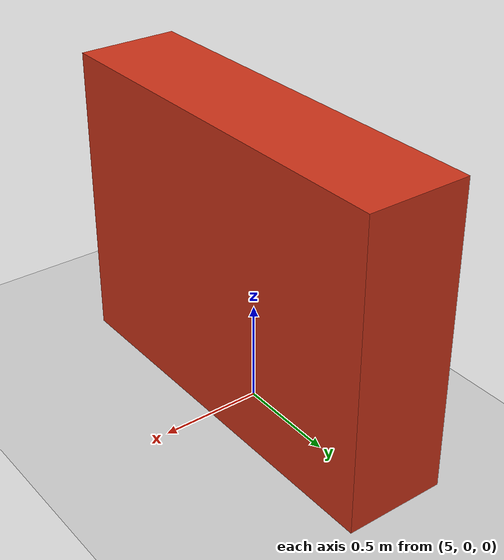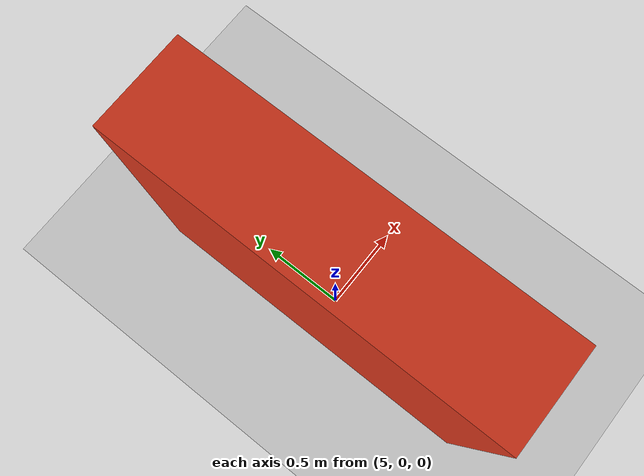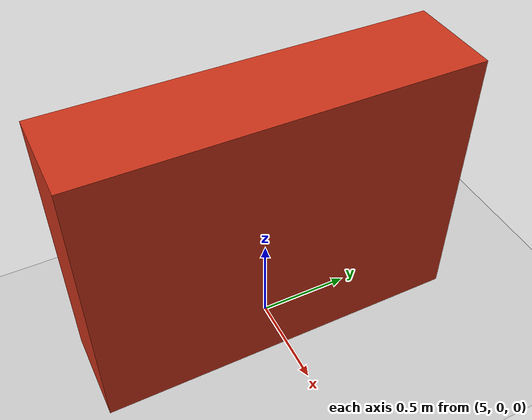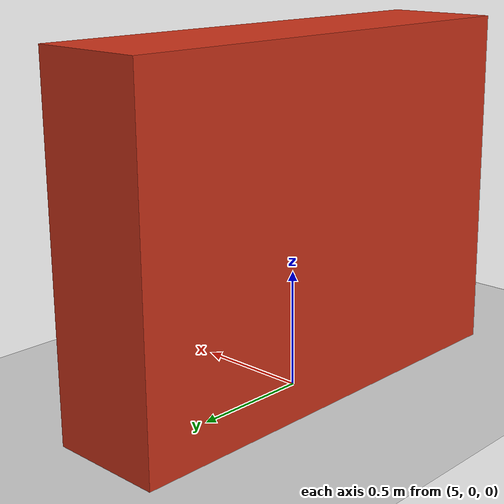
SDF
<?xml version="1.0"?>
<sdf version="1.6">
  <world name="m2_regression">
    <gravity>0 0 -9.81</gravity>
    <physics name="deterministic_physics" type="ode">
      <max_step_size>0.002</max_step_size>
      <real_time_update_rate>500</real_time_update_rate>
    </physics>
    <include><uri>model://sun</uri></include>
    <include><uri>model://ground_plane</uri></include>
    <!-- At reset the laser origin is x=0 and the near face is x=4.75 m. -->
    <model name="scan_target">
      <static>true</static>
      <pose>5 0 0.75 0 0 0</pose>
      <link name="link">
        <collision name="collision"><geometry><box><size>0.5 2.0 1.5</size></box></geometry></collision>
        <visual name="visual"><geometry><box><size>0.5 2.0 1.5</size></box></geometry><material><ambient>0.8 0.2 0.1 1</ambient></material></visual>
      </link>
    </model>
  </world>
</sdf>
